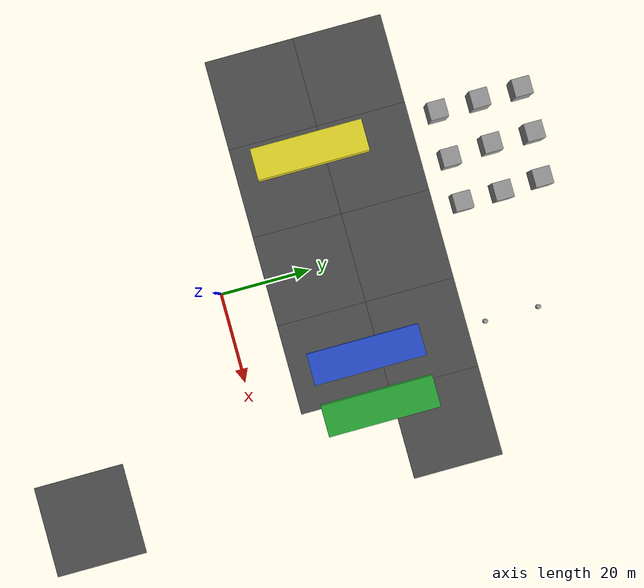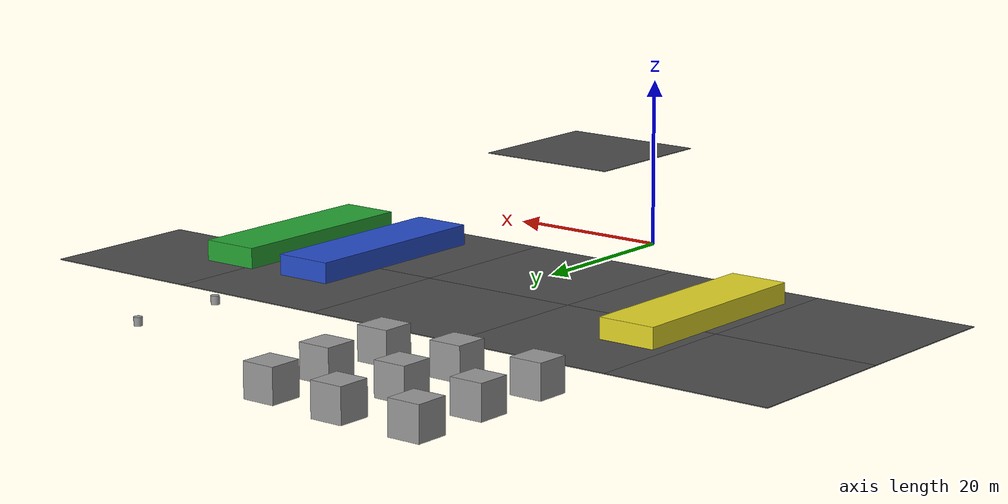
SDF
<gazebo version="1.2">
 <world name="default">
  <model name="unit_box_4">
   <pose>-25.000000 27.000000 0.500000 0.000000 0.000000 0.000000</pose>
   <link name="link">
    <inertial>
     <mass>1.000000</mass>
     <inertia>
      <ixx>1.000000</ixx>
      <ixy>0.000000</ixy>
      <ixz>0.000000</ixz>
      <iyy>1.000000</iyy>
      <iyz>0.000000</iyz>
      <izz>1.000000</izz>
     </inertia>
    </inertial>
    <collision name="collision">
     <geometry><box><size>80.000000 20.000000 3.000000</size></box></geometry>
    </collision>
    <visual name="visual">
     <geometry><box><size>7.000000 25.000000 4.000000</size></box></geometry>
     <material>
      <script><uri>file://media/materials/scripts/gazebo.material</uri><name>Gazebo/Yellow</name></script>
     </material>
    </visual>
    <velocity_decay><linear>0.000000</linear><angular>0.000000</angular></velocity_decay>
   </link>
   <static>1</static>
  </model>
  <model name="unit_box_5">
   <pose>32.514400 27.000000 0.500000 0.000000 0.000000 0.000000</pose>
   <link name="link">
    <inertial>
     <mass>1.000000</mass>
     <inertia>
      <ixx>1.000000</ixx>
      <ixy>0.000000</ixy>
      <ixz>0.000000</ixz>
      <iyy>1.000000</iyy>
      <iyz>0.000000</iyz>
      <izz>1.000000</izz>
     </inertia>
    </inertial>
    <collision name="collision">
     <geometry><box><size>1.000000 1.000000 1.000000</size></box></geometry>
    </collision>
    <visual name="visual">
     <geometry><box><size>7.000000 25.000000 4.000000</size></box></geometry>
     <material>
      <script><uri>file://media/materials/scripts/gazebo.material</uri><name>Gazebo/Green</name></script>
     </material>
    </visual>
    <velocity_decay><linear>0.000000</linear><angular>0.000000</angular></velocity_decay>
   </link>
   <static>1</static>
  </model>
  <model name="unit_box_6">
   <pose>21.000000 27.000000 0.500000 0.000000 0.000000 0.000000</pose>
   <link name="link">
    <inertial>
     <mass>1.000000</mass>
     <inertia>
      <ixx>1.000000</ixx>
      <ixy>0.000000</ixy>
      <ixz>0.000000</ixz>
      <iyy>1.000000</iyy>
      <iyz>0.000000</iyz>
      <izz>1.000000</izz>
     </inertia>
    </inertial>
    <collision name="collision">
     <geometry><box><size>1.000000 1.000000 1.000000</size></box></geometry>
    </collision>
    <visual name="visual">
     <geometry><box><size>7.000000 25.000000 4.000000</size></box></geometry>
     <material>
      <script><uri>file://media/materials/scripts/gazebo.material</uri><name>Gazebo/Blue</name></script>
     </material>
    </visual>
    <velocity_decay><linear>0.000000</linear><angular>0.000000</angular></velocity_decay>
   </link>
   <static>1</static>
  </model>
  <model name="asphalt_plane">
   <static>1</static>
   <link name="link">
    <collision name="collision">
     <geometry><box><size>20.000000 20.000000 0.100000</size></box></geometry>
    </collision>
    <visual name="visual">
     <cast_shadows>0</cast_shadows>
     <geometry><box><size>20.000000 20.000000 0.100000</size></box></geometry>
     <material>
      <script>
       <uri>model://asphalt_plane/materials/scripts</uri>
       <uri>model://asphalt_plane/materials/textures</uri>
       <name>vrc/asphalt</name>
      </script>
     </material>
    </visual>
    <velocity_decay><linear>0.000000</linear><angular>0.000000</angular></velocity_decay>
   </link>
   <pose>40.000000 -40.520300 0.000000 0.000000 0.000000 0.000000</pose>
  </model>
  <model name="asphalt_plane_4">
   <static>1</static>
   <link name="link">
    <collision name="collision">
     <geometry><box><size>20.000000 20.000000 0.100000</size></box></geometry>
    </collision>
    <visual name="visual">
     <cast_shadows>0</cast_shadows>
     <geometry><box><size>20.000000 20.000000 0.100000</size></box></geometry>
     <material>
      <script>
       <uri>model://asphalt_plane/materials/scripts</uri>
       <uri>model://asphalt_plane/materials/textures</uri>
       <name>vrc/asphalt</name>
      </script>
     </material>
    </visual>
    <velocity_decay><linear>0.000000</linear><angular>0.000000</angular></velocity_decay>
   </link>
   <pose>40.000000 40.000000 0.000000 0.000000 0.000000 0.000000</pose>
  </model>
  <model name="asphalt_plane_5">
   <static>1</static>
   <link name="link">
    <collision name="collision">
     <geometry><box><size>20.000000 20.000000 0.100000</size></box></geometry>
    </collision>
    <visual name="visual">
     <cast_shadows>0</cast_shadows>
     <geometry><box><size>20.000000 20.000000 0.100000</size></box></geometry>
     <material>
      <script>
       <uri>model://asphalt_plane/materials/scripts</uri>
       <uri>model://asphalt_plane/materials/textures</uri>
       <name>vrc/asphalt</name>
      </script>
     </material>
    </visual>
    <velocity_decay><linear>0.000000</linear><angular>0.000000</angular></velocity_decay>
   </link>
   <pose>20.000000 40.000000 0.000000 0.000000 0.000000 0.000000</pose>
  </model>
  <model name="asphalt_plane_6">
   <static>1</static>
   <link name="link">
    <collision name="collision">
     <geometry><box><size>20.000000 20.000000 0.100000</size></box></geometry>
    </collision>
    <visual name="visual">
     <cast_shadows>0</cast_shadows>
     <geometry><box><size>20.000000 20.000000 0.100000</size></box></geometry>
     <material>
      <script>
       <uri>model://asphalt_plane/materials/scripts</uri>
       <uri>model://asphalt_plane/materials/textures</uri>
       <name>vrc/asphalt</name>
      </script>
     </material>
    </visual>
    <velocity_decay><linear>0.000000</linear><angular>0.000000</angular></velocity_decay>
   </link>
   <pose>20.000000 20.000000 0.000000 0.000000 0.000000 0.000000</pose>
  </model>
  <model name="asphalt_plane_7">
   <static>1</static>
   <link name="link">
    <collision name="collision">
     <geometry><box><size>20.000000 20.000000 0.100000</size></box></geometry>
    </collision>
    <visual name="visual">
     <cast_shadows>0</cast_shadows>
     <geometry><box><size>20.000000 20.000000 0.100000</size></box></geometry>
     <material>
      <script>
       <uri>model://asphalt_plane/materials/scripts</uri>
       <uri>model://asphalt_plane/materials/textures</uri>
       <name>vrc/asphalt</name>
      </script>
     </material>
    </visual>
    <velocity_decay><linear>0.000000</linear><angular>0.000000</angular></velocity_decay>
   </link>
   <pose>0.000000 40.000000 0.000000 0.000000 0.000000 0.000000</pose>
  </model>
  <model name="asphalt_plane_8">
   <static>1</static>
   <link name="link">
    <collision name="collision">
     <geometry><box><size>20.000000 20.000000 0.100000</size></box></geometry>
    </collision>
    <visual name="visual">
     <cast_shadows>0</cast_shadows>
     <geometry><box><size>20.000000 20.000000 0.100000</size></box></geometry>
     <material>
      <script>
       <uri>model://asphalt_plane/materials/scripts</uri>
       <uri>model://asphalt_plane/materials/textures</uri>
       <name>vrc/asphalt</name>
      </script>
     </material>
    </visual>
    <velocity_decay><linear>0.000000</linear><angular>0.000000</angular></velocity_decay>
   </link>
   <pose>-20.000000 40.000000 0.000000 0.000000 0.000000 0.000000</pose>
  </model>
  <model name="asphalt_plane_9">
   <static>1</static>
   <link name="link">
    <collision name="collision">
     <geometry><box><size>20.000000 20.000000 0.100000</size></box></geometry>
    </collision>
    <visual name="visual">
     <cast_shadows>0</cast_shadows>
     <geometry><box><size>20.000000 20.000000 0.100000</size></box></geometry>
     <material>
      <script>
       <uri>model://asphalt_plane/materials/scripts</uri>
       <uri>model://asphalt_plane/materials/textures</uri>
       <name>vrc/asphalt</name>
      </script>
     </material>
    </visual>
    <velocity_decay><linear>0.000000</linear><angular>0.000000</angular></velocity_decay>
   </link>
   <pose>-40.000000 40.000000 0.000000 0.000000 0.000000 0.000000</pose>
  </model>
  <model name="asphalt_plane_10">
   <static>1</static>
   <link name="link">
    <collision name="collision">
     <geometry><box><size>20.000000 20.000000 0.100000</size></box></geometry>
    </collision>
    <visual name="visual">
     <cast_shadows>0</cast_shadows>
     <geometry><box><size>20.000000 20.000000 0.100000</size></box></geometry>
     <material>
      <script>
       <uri>model://asphalt_plane/materials/scripts</uri>
       <uri>model://asphalt_plane/materials/textures</uri>
       <name>vrc/asphalt</name>
      </script>
     </material>
    </visual>
    <velocity_decay><linear>0.000000</linear><angular>0.000000</angular></velocity_decay>
   </link>
   <pose>0.000000 20.000000 0.000000 0.000000 0.000000 0.000000</pose>
  </model>
  <model name="asphalt_plane_11">
   <static>1</static>
   <link name="link">
    <collision name="collision">
     <geometry><box><size>20.000000 20.000000 0.100000</size></box></geometry>
    </collision>
    <visual name="visual">
     <cast_shadows>0</cast_shadows>
     <geometry><box><size>20.000000 20.000000 0.100000</size></box></geometry>
     <material>
      <script>
       <uri>model://asphalt_plane/materials/scripts</uri>
       <uri>model://asphalt_plane/materials/textures</uri>
       <name>vrc/asphalt</name>
      </script>
     </material>
    </visual>
    <velocity_decay><linear>0.000000</linear><angular>0.000000</angular></velocity_decay>
   </link>
   <pose>-20.000000 20.000000 0.000000 0.000000 0.000000 0.000000</pose>
  </model>
  <model name="asphalt_plane_12">
   <static>1</static>
   <link name="link">
    <collision name="collision">
     <geometry><box><size>20.000000 20.000000 0.100000</size></box></geometry>
    </collision>
    <visual name="visual">
     <cast_shadows>0</cast_shadows>
     <geometry><box><size>20.000000 20.000000 0.100000</size></box></geometry>
     <material>
      <script>
       <uri>model://asphalt_plane/materials/scripts</uri>
       <uri>model://asphalt_plane/materials/textures</uri>
       <name>vrc/asphalt</name>
      </script>
     </material>
    </visual>
    <velocity_decay><linear>0.000000</linear><angular>0.000000</angular></velocity_decay>
   </link>
   <pose>-40.000000 20.000000 0.000000 0.000000 0.000000 0.000000</pose>
  </model>
  <model name="unit_cylinder_1">
   <pose>21.000000 54.000000 0.500000 0.000000 0.000000 0.000000</pose>
   <link name="link">
    <inertial>
     <mass>1.000000</mass>
     <inertia>
      <ixx>1.000000</ixx>
      <ixy>0.000000</ixy>
      <ixz>0.000000</ixz>
      <iyy>1.000000</iyy>
      <iyz>0.000000</iyz>
      <izz>1.000000</izz>
     </inertia>
    </inertial>
    <collision name="collision">
     <geometry><cylinder><radius>2.500000</radius><length>10.000000</length></cylinder></geometry>
    </collision>
    <visual name="visual">
     <geometry><cylinder><radius>0.500000</radius><length>1.000000</length></cylinder></geometry>
     <material>
      <script><uri>file://media/materials/scripts/gazebo.material</uri><name>Gazebo/Grey</name></script>
     </material>
    </visual>
    <velocity_decay><linear>0.000000</linear><angular>0.000000</angular></velocity_decay>
   </link>
   <static>1</static>
  </model>
  <model name="unit_cylinder_2">
   <pose>21.000000 66.000000 0.500000 0.000000 0.000000 0.000000</pose>
   <link name="link">
    <inertial>
     <mass>1.000000</mass>
     <inertia>
      <ixx>1.000000</ixx>
      <ixy>0.000000</ixy>
      <ixz>0.000000</ixz>
      <iyy>1.000000</iyy>
      <iyz>0.000000</iyz>
      <izz>1.000000</izz>
     </inertia>
    </inertial>
    <collision name="collision">
     <geometry><cylinder><radius>2.500000</radius><length>10.000000</length></cylinder></geometry>
    </collision>
    <visual name="visual">
     <geometry><cylinder><radius>0.500000</radius><length>1.000000</length></cylinder></geometry>
     <material>
      <script><uri>file://media/materials/scripts/gazebo.material</uri><name>Gazebo/Grey</name></script>
     </material>
    </visual>
    <velocity_decay><linear>0.000000</linear><angular>0.000000</angular></velocity_decay>
   </link>
   <static>1</static>
  </model>
  <model name="unit_box_1">
   <pose>-26.000000 56.000000 0.500000 0.000000 0.000000 0.000000</pose>
   <link name="link">
    <inertial>
     <mass>1.000000</mass>
     <inertia>
      <ixx>1.000000</ixx>
      <ixy>0.000000</ixy>
      <ixz>0.000000</ixz>
      <iyy>1.000000</iyy>
      <iyz>0.000000</iyz>
      <izz>1.000000</izz>
     </inertia>
    </inertial>
    <collision name="collision">
     <geometry><box><size>4.000000 4.000000 4.000000</size></box></geometry>
    </collision>
    <visual name="visual">
     <geometry><box><size>4.000000 4.000000 4.000000</size></box></geometry>
     <material>
      <script><uri>file://media/materials/scripts/gazebo.material</uri><name>Gazebo/Grey</name></script>
     </material>
    </visual>
    <velocity_decay><linear>0.000000</linear><angular>0.000000</angular></velocity_decay>
   </link>
   <static>1</static>
  </model>
  <model name="unit_box_2">
   <pose>-26.000000 65.497300 0.500000 0.000000 0.000000 0.000000</pose>
   <link name="link">
    <inertial>
     <mass>1.000000</mass>
     <inertia>
      <ixx>1.000000</ixx>
      <ixy>0.000000</ixy>
      <ixz>0.000000</ixz>
      <iyy>1.000000</iyy>
      <iyz>0.000000</iyz>
      <izz>1.000000</izz>
     </inertia>
    </inertial>
    <collision name="collision">
     <geometry><box><size>4.000000 4.000000 4.000000</size></box></geometry>
    </collision>
    <visual name="visual">
     <geometry><box><size>4.000000 4.000000 4.000000</size></box></geometry>
     <material>
      <script><uri>file://media/materials/scripts/gazebo.material</uri><name>Gazebo/Grey</name></script>
     </material>
    </visual>
    <velocity_decay><linear>0.000000</linear><angular>0.000000</angular></velocity_decay>
   </link>
   <static>1</static>
  </model>
  <model name="unit_box_3">
   <pose>-26.000000 75.000000 0.500000 0.000000 0.000000 0.000000</pose>
   <link name="link">
    <inertial>
     <mass>1.000000</mass>
     <inertia>
      <ixx>1.000000</ixx>
      <ixy>0.000000</ixy>
      <ixz>0.000000</ixz>
      <iyy>1.000000</iyy>
      <iyz>0.000000</iyz>
      <izz>1.000000</izz>
     </inertia>
    </inertial>
    <collision name="collision">
     <geometry><box><size>4.000000 4.000000 4.000000</size></box></geometry>
    </collision>
    <visual name="visual">
     <geometry><box><size>4.000000 4.000000 4.000000</size></box></geometry>
     <material>
      <script><uri>file://media/materials/scripts/gazebo.material</uri><name>Gazebo/Grey</name></script>
     </material>
    </visual>
    <velocity_decay><linear>0.000000</linear><angular>0.000000</angular></velocity_decay>
   </link>
   <static>1</static>
  </model>
  <model name="unit_box_4_0">
   <pose>-15.447900 56.000000 0.500000 0.000000 0.000000 0.000000</pose>
   <link name="link">
    <inertial>
     <mass>1.000000</mass>
     <inertia>
      <ixx>1.000000</ixx>
      <ixy>0.000000</ixy>
      <ixz>0.000000</ixz>
      <iyy>1.000000</iyy>
      <iyz>0.000000</iyz>
      <izz>1.000000</izz>
     </inertia>
    </inertial>
    <collision name="collision">
     <geometry><box><size>4.000000 4.000000 4.000000</size></box></geometry>
    </collision>
    <visual name="visual">
     <geometry><box><size>4.000000 4.000000 4.000000</size></box></geometry>
     <material>
      <script><uri>file://media/materials/scripts/gazebo.material</uri><name>Gazebo/Grey</name></script>
     </material>
    </visual>
    <velocity_decay><linear>0.000000</linear><angular>0.000000</angular></velocity_decay>
   </link>
   <static>1</static>
  </model>
  <model name="unit_box_5_0">
   <pose>-16.000000 65.438600 0.500000 0.000000 0.000000 0.000000</pose>
   <link name="link">
    <inertial>
     <mass>1.000000</mass>
     <inertia>
      <ixx>1.000000</ixx>
      <ixy>0.000000</ixy>
      <ixz>0.000000</ixz>
      <iyy>1.000000</iyy>
      <iyz>0.000000</iyz>
      <izz>1.000000</izz>
     </inertia>
    </inertial>
    <collision name="collision">
     <geometry><box><size>4.000000 4.000000 4.000000</size></box></geometry>
    </collision>
    <visual name="visual">
     <geometry><box><size>4.000000 4.000000 4.000000</size></box></geometry>
     <material>
      <script><uri>file://media/materials/scripts/gazebo.material</uri><name>Gazebo/Grey</name></script>
     </material>
    </visual>
    <velocity_decay><linear>0.000000</linear><angular>0.000000</angular></velocity_decay>
   </link>
   <static>1</static>
  </model>
  <model name="unit_box_6_0">
   <pose>-16.000000 75.000000 0.500000 0.000000 0.000000 0.000000</pose>
   <link name="link">
    <inertial>
     <mass>1.000000</mass>
     <inertia>
      <ixx>1.000000</ixx>
      <ixy>0.000000</ixy>
      <ixz>0.000000</ixz>
      <iyy>1.000000</iyy>
      <iyz>0.000000</iyz>
      <izz>1.000000</izz>
     </inertia>
    </inertial>
    <collision name="collision">
     <geometry><box><size>4.000000 4.000000 4.000000</size></box></geometry>
    </collision>
    <visual name="visual">
     <geometry><box><size>4.000000 4.000000 4.000000</size></box></geometry>
     <material>
      <script><uri>file://media/materials/scripts/gazebo.material</uri><name>Gazebo/Grey</name></script>
     </material>
    </visual>
    <velocity_decay><linear>0.000000</linear><angular>0.000000</angular></velocity_decay>
   </link>
   <static>1</static>
  </model>
  <model name="unit_box_7">
   <pose>-5.510070 56.000000 0.500000 0.000000 0.000000 0.000000</pose>
   <link name="link">
    <inertial>
     <mass>1.000000</mass>
     <inertia>
      <ixx>1.000000</ixx>
      <ixy>0.000000</ixy>
      <ixz>0.000000</ixz>
      <iyy>1.000000</iyy>
      <iyz>0.000000</iyz>
      <izz>1.000000</izz>
     </inertia>
    </inertial>
    <collision name="collision">
     <geometry><box><size>4.000000 4.000000 4.000000</size></box></geometry>
    </collision>
    <visual name="visual">
     <geometry><box><size>4.000000 4.000000 4.000000</size></box></geometry>
     <material>
      <script><uri>file://media/materials/scripts/gazebo.material</uri><name>Gazebo/Grey</name></script>
     </material>
    </visual>
    <velocity_decay><linear>0.000000</linear><angular>0.000000</angular></velocity_decay>
   </link>
   <static>1</static>
  </model>
  <model name="unit_box_8">
   <pose>-5.453640 65.000000 0.500000 0.000000 0.000000 0.000000</pose>
   <link name="link">
    <inertial>
     <mass>1.000000</mass>
     <inertia>
      <ixx>1.000000</ixx>
      <ixy>0.000000</ixy>
      <ixz>0.000000</ixz>
      <iyy>1.000000</iyy>
      <iyz>0.000000</iyz>
      <izz>1.000000</izz>
     </inertia>
    </inertial>
    <collision name="collision">
     <geometry><box><size>4.000000 4.000000 4.000000</size></box></geometry>
    </collision>
    <visual name="visual">
     <geometry><box><size>4.000000 4.000000 4.000000</size></box></geometry>
     <material>
      <script><uri>file://media/materials/scripts/gazebo.material</uri><name>Gazebo/Grey</name></script>
     </material>
    </visual>
    <velocity_decay><linear>0.000000</linear><angular>0.000000</angular></velocity_decay>
   </link>
   <static>1</static>
  </model>
  <model name="unit_box_9">
   <pose>-6.000000 74.000000 0.500000 0.000000 0.000000 0.000000</pose>
   <link name="link">
    <inertial>
     <mass>1.000000</mass>
     <inertia>
      <ixx>1.000000</ixx>
      <ixy>0.000000</ixy>
      <ixz>0.000000</ixz>
      <iyy>1.000000</iyy>
      <iyz>0.000000</iyz>
      <izz>1.000000</izz>
     </inertia>
    </inertial>
    <collision name="collision">
     <geometry><box><size>4.000000 4.000000 4.000000</size></box></geometry>
    </collision>
    <visual name="visual">
     <geometry><box><size>4.000000 4.000000 4.000000</size></box></geometry>
     <material>
      <script><uri>file://media/materials/scripts/gazebo.material</uri><name>Gazebo/Grey</name></script>
     </material>
    </visual>
    <velocity_decay><linear>0.000000</linear><angular>0.000000</angular></velocity_decay>
   </link>
   <static>1</static>
  </model>
 </world>
</gazebo>
